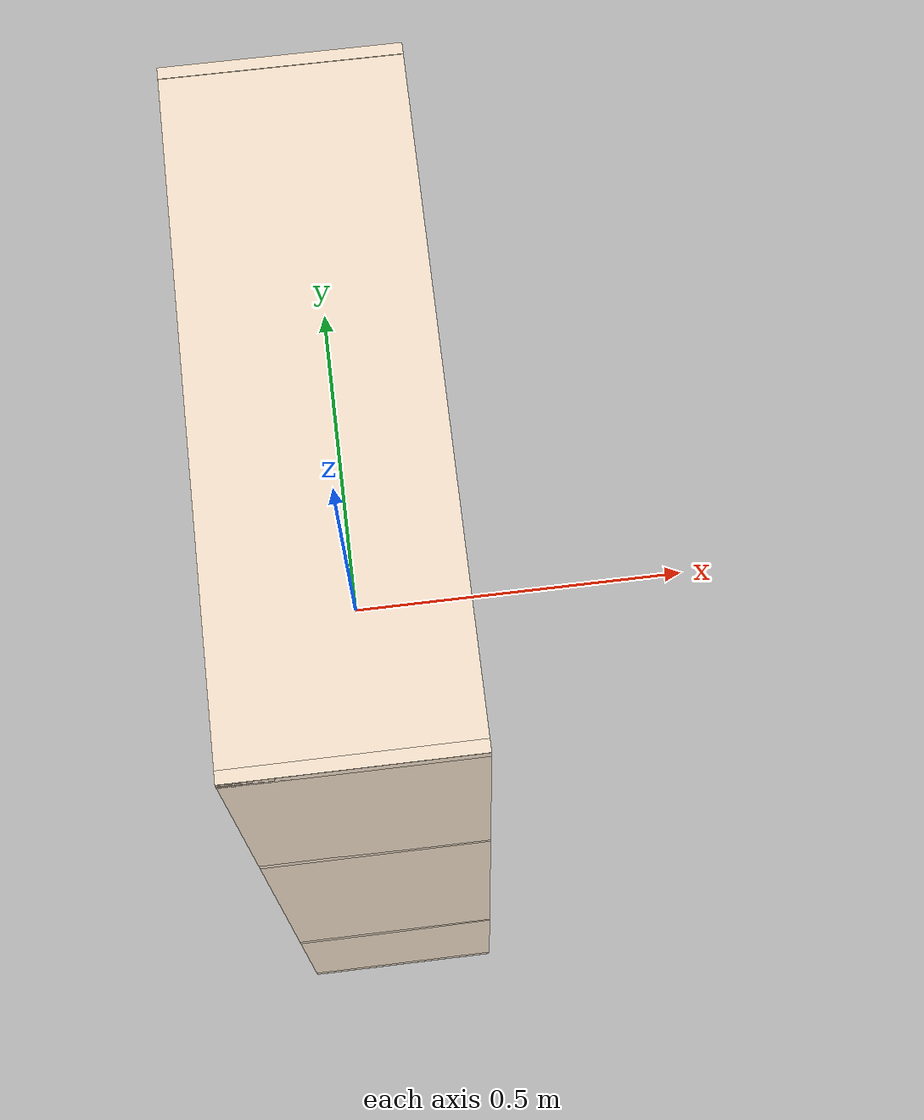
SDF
<?xml version="1.0"?>
<sdf version="1.7">
  <model name="shelves">
    <link name="shelves_body">
      <visual name="right_wall">
        <pose> 0 0.442 0.1 0 0 0</pose>
        <geometry>
          <box>
            <size>0.3 0.016 1.416</size>
          </box>
        </geometry>
        <material>
          <ambient>1 0.92 0.83 1</ambient>
          <diffuse>1 0.92 0.83 1</diffuse>
          <specular>0.1 0.1 0.1 1</specular>
          <emissive>0 0 0 0</emissive>
        </material>
      </visual>
      <visual name="left_wall">
        <pose> 0 -0.442 0.1 0 0 0</pose>
        <geometry>
          <box>
            <size>0.3 0.016 1.416</size>
          </box>
        </geometry>
        <material>
          <ambient>1 0.92 0.83 1</ambient>
          <diffuse>1 0.92 0.83 1</diffuse>
          <specular>0.1 0.1 0.1 1</specular>
          <emissive>0 0 0 0</emissive>
        </material>
      </visual>
      <collision name="right_wall">
        <pose> 0 0.442 0.1 0 0 0</pose>
        <geometry>
          <box>
            <size>0.3 0.016 1.416</size>
          </box>
        </geometry>
      </collision>
      <collision name="left_wall">
        <pose> 0 -0.442 0.1 0 0 0</pose>
        <geometry>
          <box>
            <size>0.3 0.016 1.416</size>
          </box>
        </geometry>
      </collision>
    </link>
    <link name="top_and_bottom">
      <visual name="bottom">
        <pose> 0 0 -0.599 0 0 0</pose>
        <geometry>
          <box>
            <size>0.3 0.9 0.016</size>
          </box>
        </geometry>
        <material>
          <ambient>1 0.92 0.83 1</ambient>
          <diffuse>1 0.92 0.83 1</diffuse>
          <specular>0.1 0.1 0.1 1</specular>
          <emissive>0 0 0 0</emissive>
        </material>
      </visual>
      <visual name="top">
        <pose> 0 0 0.799 0 0 0</pose>
        <geometry>
          <box>
            <size>0.3 0.9 0.016</size>
          </box>
        </geometry>
        <material>
          <ambient>1 0.92 0.83 1</ambient>
          <diffuse>1 0.92 0.83 1</diffuse>
          <specular>0.1 0.1 0.1 1</specular>
          <emissive>0 0 0 0</emissive>
        </material>
      </visual>
      <visual name="shelf_lower">
        <pose> 0 0 -0.26230 0 0 0</pose>
        <geometry>
          <box>
            <size>0.3 0.9 0.016</size>
          </box>
        </geometry>
        <material>
          <ambient>1 0.92 0.83 1</ambient>
          <diffuse>1 0.92 0.83 1</diffuse>
          <specular>0.1 0.1 0.1 1</specular>
          <emissive>0 0 0 0</emissive>
        </material>
      </visual>
      <visual name="shelf_upper">
        <!-- default z: 0.26230 -->
        <pose> 0 0 0.35 0 0 0</pose>
        <geometry>
          <box>
            <size>0.3 0.9 0.016</size>
          </box>
        </geometry>
        <material>
          <ambient>1 0.92 0.83 1</ambient>
          <diffuse>1 0.92 0.83 1</diffuse>
          <specular>0.1 0.1 0.1 1</specular>
          <emissive>0 0 0 0</emissive>
        </material>
      </visual>
      <collision name="bottom">
        <pose> 0 0 -0.599 0 0 0</pose>
        <geometry>
          <box>
            <size>0.3 0.9 0.016</size>
          </box>
        </geometry>
      </collision>
      <collision name="top">
        <pose> 0 0 0.799 0 0 0</pose>
        <geometry>
          <box>
            <size>0.3 0.9 0.016</size>
          </box>
        </geometry>
      </collision>
      <collision name="shelf_lower">
        <pose> 0 0 -0.26230 0 0 0</pose>
        <geometry>
          <box>
            <size>0.3 0.9 0.016</size>
          </box>
        </geometry>
      </collision>
      <collision name="shelf_upper">
        <pose> 0 0 0.35 0 0 0</pose>
        <geometry>
          <box>
            <size>0.3 0.9 0.016</size>
          </box>
        </geometry>
      </collision>
    </link>
    <!-- joint between bottom_top and world -->
    <joint name="top_and_bottom_shelves_body" type="fixed">
      <child>top_and_bottom</child>
      <parent>shelves_body</parent>
    </joint>
  </model>
</sdf>
